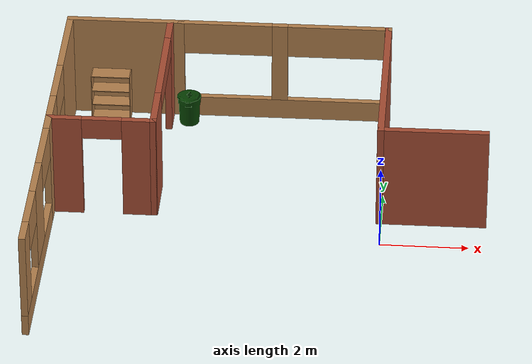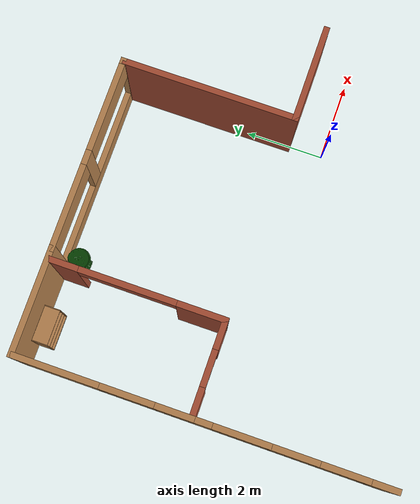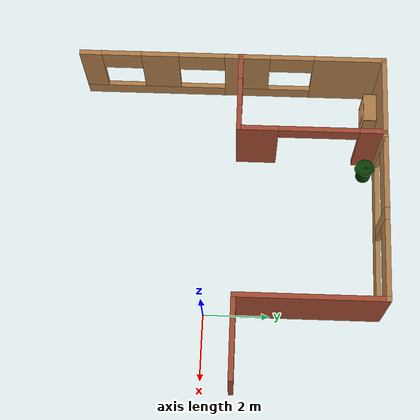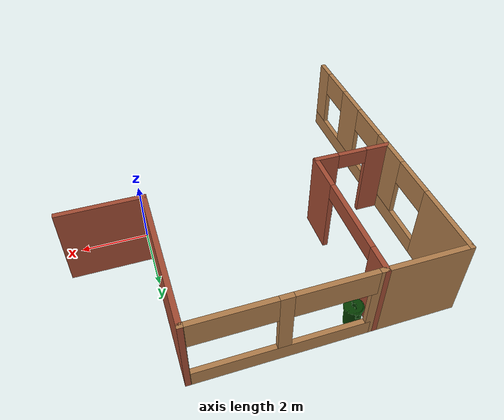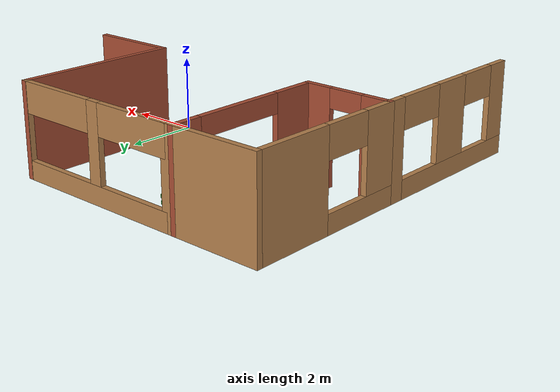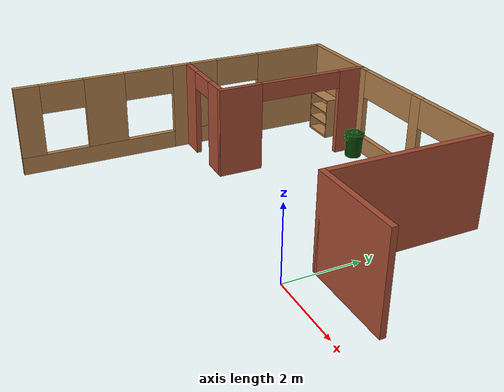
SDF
<sdf version="1.6">
 <model name="turtlebot3_house">
  <link name="Wall_101">
   <pose>-0.05 3.1 0 0 0 -1.5708</pose>
   <visual name="Wall_101_Visual">
    <pose>0 0 1.25 0 -0 0</pose>
    <geometry><box><size>4.5 0.15 2.5</size></box></geometry>
    <material>
     <script><uri>file://media/materials/scripts/gazebo.material</uri><name>Gazebo/Bricks</name></script>
     <ambient>1 1 1 1</ambient>
     <diffuse>1 1 1 1</diffuse>
     <specular>0.2 0.2 0.2 1</specular>
     <emissive>0 0 0 1</emissive>
    </material>
   </visual>
   <collision name="Wall_101_Collision">
    <pose>0 0 1.25 0 -0 0</pose>
    <geometry><box><size>4.5 0.15 2.5</size></box></geometry>
    <surface>
     <friction>
      <ode><mu>1</mu><mu2>1</mu2><fdir1>0 0 0</fdir1><slip1>0</slip1><slip2>0</slip2></ode>
      <torsional>
       <coefficient>1</coefficient>
       <patch_radius>0</patch_radius>
       <surface_radius>0</surface_radius>
       <use_patch_radius>1</use_patch_radius>
       <ode><slip>0</slip></ode>
      </torsional>
     </friction>
     <bounce><restitution_coefficient>0</restitution_coefficient><threshold>1e+06</threshold></bounce>
     <contact>
      <collide_without_contact>0</collide_without_contact>
      <collide_without_contact_bitmask>1</collide_without_contact_bitmask>
      <collide_bitmask>1</collide_bitmask>
      <ode>
       <soft_cfm>0</soft_cfm>
       <soft_erp>0.2</soft_erp>
       <kp>1e+13</kp>
       <kd>1</kd>
       <max_vel>0.01</max_vel>
       <min_depth>0</min_depth>
      </ode>
      <bullet>
       <split_impulse>1</split_impulse>
       <split_impulse_penetration_threshold>-0.01</split_impulse_penetration_threshold>
       <soft_cfm>0</soft_cfm>
       <soft_erp>0.2</soft_erp>
       <kp>1e+13</kp>
       <kd>1</kd>
      </bullet>
     </contact>
    </surface>
   </collision>
  </link>
  <link name="Wall_83">
   <pose>-2.475 5.275 0 0 -0 3.14159</pose>
   <visual name="Wall_83_Visual_2">
    <pose>0.110246 0 1.5 0 -0 0</pose>
    <geometry><box><size>0.37052 0.15 2</size></box></geometry>
    <material>
     <script><uri>file://media/materials/scripts/gazebo.material</uri><name>Gazebo/Wood</name></script>
     <ambient>1 1 1 1</ambient>
     <diffuse>1 1 1 1</diffuse>
     <specular>0.2 0.2 0.2 1</specular>
     <emissive>0 0 0 1</emissive>
    </material>
   </visual>
   <visual name="Wall_83_Visual_6">
    <pose>1.39775 0 2.1 0 -0 0</pose>
    <geometry><box><size>2.20449 0.15 0.8</size></box></geometry>
    <material>
     <script><uri>file://media/materials/scripts/gazebo.material</uri><name>Gazebo/Wood</name></script>
     <ambient>1 1 1 1</ambient>
     <diffuse>1 1 1 1</diffuse>
     <specular>0.2 0.2 0.2 1</specular>
     <emissive>0 0 0 1</emissive>
    </material>
   </visual>
   <visual name="Wall_83_Visual_3">
    <pose>0.110246 0 1.5 0 -0 0</pose>
    <geometry><box><size>0.37052 0.15 2</size></box></geometry>
    <material>
     <script><uri>file://media/materials/scripts/gazebo.material</uri><name>Gazebo/Wood</name></script>
     <ambient>1 1 1 1</ambient>
     <diffuse>1 1 1 1</diffuse>
     <specular>0.2 0.2 0.2 1</specular>
     <emissive>0 0 0 1</emissive>
    </material>
   </visual>
   <visual name="Wall_83_Visual_1">
    <pose>0.080993 0 0.25 0 -0 0</pose>
    <geometry><box><size>4.83801 0.15 0.5</size></box></geometry>
    <material>
     <script><uri>file://media/materials/scripts/gazebo.material</uri><name>Gazebo/Wood</name></script>
     <ambient>1 1 1 1</ambient>
     <diffuse>1 1 1 1</diffuse>
     <specular>0.2 0.2 0.2 1</specular>
     <emissive>0 0 0 1</emissive>
    </material>
   </visual>
   <visual name="Wall_83_Visual_4">
    <pose>-1.20651 0 2.1 0 -0 0</pose>
    <geometry><box><size>2.263 0.15 0.8</size></box></geometry>
    <material>
     <script><uri>file://media/materials/scripts/gazebo.material</uri><name>Gazebo/Wood</name></script>
     <ambient>1 1 1 1</ambient>
     <diffuse>1 1 1 1</diffuse>
     <specular>0.2 0.2 0.2 1</specular>
     <emissive>0 0 0 1</emissive>
    </material>
   </visual>
   <visual name="Wall_83_Visual_5">
    <pose>1.39775 0 2.1 0 -0 0</pose>
    <geometry><box><size>2.20449 0.15 0.8</size></box></geometry>
    <material>
     <script><uri>file://media/materials/scripts/gazebo.material</uri><name>Gazebo/Wood</name></script>
     <ambient>1 1 1 1</ambient>
     <diffuse>1 1 1 1</diffuse>
     <specular>0.2 0.2 0.2 1</specular>
     <emissive>0 0 0 1</emissive>
    </material>
   </visual>
   <visual name="Wall_83_Visual_0">
    <pose>-2.41901 0 1.25 0 -0 0</pose>
    <geometry><box><size>0.161986 0.15 2.5</size></box></geometry>
    <material>
     <script><uri>file://media/materials/scripts/gazebo.material</uri><name>Gazebo/Wood</name></script>
     <ambient>1 1 1 1</ambient>
     <diffuse>1 1 1 1</diffuse>
     <specular>0.2 0.2 0.2 1</specular>
     <emissive>0 0 0 1</emissive>
    </material>
   </visual>
   <collision name="Wall_83_Collision_4">
    <pose>-1.20651 0 2.1 0 -0 0</pose>
    <geometry><box><size>2.263 0.15 0.8</size></box></geometry>
    <surface>
     <friction>
      <ode><mu>1</mu><mu2>1</mu2><fdir1>0 0 0</fdir1><slip1>0</slip1><slip2>0</slip2></ode>
      <torsional>
       <coefficient>1</coefficient>
       <patch_radius>0</patch_radius>
       <surface_radius>0</surface_radius>
       <use_patch_radius>1</use_patch_radius>
       <ode><slip>0</slip></ode>
      </torsional>
     </friction>
     <bounce><restitution_coefficient>0</restitution_coefficient><threshold>1e+06</threshold></bounce>
     <contact>
      <collide_without_contact>0</collide_without_contact>
      <collide_without_contact_bitmask>1</collide_without_contact_bitmask>
      <collide_bitmask>1</collide_bitmask>
      <ode>
       <soft_cfm>0</soft_cfm>
       <soft_erp>0.2</soft_erp>
       <kp>1e+13</kp>
       <kd>1</kd>
       <max_vel>0.01</max_vel>
       <min_depth>0</min_depth>
      </ode>
      <bullet>
       <split_impulse>1</split_impulse>
       <split_impulse_penetration_threshold>-0.01</split_impulse_penetration_threshold>
       <soft_cfm>0</soft_cfm>
       <soft_erp>0.2</soft_erp>
       <kp>1e+13</kp>
       <kd>1</kd>
      </bullet>
     </contact>
    </surface>
   </collision>
   <collision name="Wall_83_Collision_2">
    <pose>0.110246 0 1.5 0 -0 0</pose>
    <geometry><box><size>0.37052 0.15 2</size></box></geometry>
    <surface>
     <friction>
      <ode><mu>1</mu><mu2>1</mu2><fdir1>0 0 0</fdir1><slip1>0</slip1><slip2>0</slip2></ode>
      <torsional>
       <coefficient>1</coefficient>
       <patch_radius>0</patch_radius>
       <surface_radius>0</surface_radius>
       <use_patch_radius>1</use_patch_radius>
       <ode><slip>0</slip></ode>
      </torsional>
     </friction>
     <bounce><restitution_coefficient>0</restitution_coefficient><threshold>1e+06</threshold></bounce>
     <contact>
      <collide_without_contact>0</collide_without_contact>
      <collide_without_contact_bitmask>1</collide_without_contact_bitmask>
      <collide_bitmask>1</collide_bitmask>
      <ode>
       <soft_cfm>0</soft_cfm>
       <soft_erp>0.2</soft_erp>
       <kp>1e+13</kp>
       <kd>1</kd>
       <max_vel>0.01</max_vel>
       <min_depth>0</min_depth>
      </ode>
      <bullet>
       <split_impulse>1</split_impulse>
       <split_impulse_penetration_threshold>-0.01</split_impulse_penetration_threshold>
       <soft_cfm>0</soft_cfm>
       <soft_erp>0.2</soft_erp>
       <kp>1e+13</kp>
       <kd>1</kd>
      </bullet>
     </contact>
    </surface>
   </collision>
   <collision name="Wall_83_Collision_6">
    <pose>1.39775 0 2.1 0 -0 0</pose>
    <geometry><box><size>2.20449 0.15 0.8</size></box></geometry>
    <surface>
     <friction>
      <ode><mu>1</mu><mu2>1</mu2><fdir1>0 0 0</fdir1><slip1>0</slip1><slip2>0</slip2></ode>
      <torsional>
       <coefficient>1</coefficient>
       <patch_radius>0</patch_radius>
       <surface_radius>0</surface_radius>
       <use_patch_radius>1</use_patch_radius>
       <ode><slip>0</slip></ode>
      </torsional>
     </friction>
     <bounce><restitution_coefficient>0</restitution_coefficient><threshold>1e+06</threshold></bounce>
     <contact>
      <collide_without_contact>0</collide_without_contact>
      <collide_without_contact_bitmask>1</collide_without_contact_bitmask>
      <collide_bitmask>1</collide_bitmask>
      <ode>
       <soft_cfm>0</soft_cfm>
       <soft_erp>0.2</soft_erp>
       <kp>1e+13</kp>
       <kd>1</kd>
       <max_vel>0.01</max_vel>
       <min_depth>0</min_depth>
      </ode>
      <bullet>
       <split_impulse>1</split_impulse>
       <split_impulse_penetration_threshold>-0.01</split_impulse_penetration_threshold>
       <soft_cfm>0</soft_cfm>
       <soft_erp>0.2</soft_erp>
       <kp>1e+13</kp>
       <kd>1</kd>
      </bullet>
     </contact>
    </surface>
   </collision>
   <collision name="Wall_83_Collision_0">
    <pose>-2.41901 0 1.25 0 -0 0</pose>
    <geometry><box><size>0.161986 0.15 2.5</size></box></geometry>
    <surface>
     <friction>
      <ode><mu>1</mu><mu2>1</mu2><fdir1>0 0 0</fdir1><slip1>0</slip1><slip2>0</slip2></ode>
      <torsional>
       <coefficient>1</coefficient>
       <patch_radius>0</patch_radius>
       <surface_radius>0</surface_radius>
       <use_patch_radius>1</use_patch_radius>
       <ode><slip>0</slip></ode>
      </torsional>
     </friction>
     <bounce><restitution_coefficient>0</restitution_coefficient><threshold>1e+06</threshold></bounce>
     <contact>
      <collide_without_contact>0</collide_without_contact>
      <collide_without_contact_bitmask>1</collide_without_contact_bitmask>
      <collide_bitmask>1</collide_bitmask>
      <ode>
       <soft_cfm>0</soft_cfm>
       <soft_erp>0.2</soft_erp>
       <kp>1e+13</kp>
       <kd>1</kd>
       <max_vel>0.01</max_vel>
       <min_depth>0</min_depth>
      </ode>
      <bullet>
       <split_impulse>1</split_impulse>
       <split_impulse_penetration_threshold>-0.01</split_impulse_penetration_threshold>
       <soft_cfm>0</soft_cfm>
       <soft_erp>0.2</soft_erp>
       <kp>1e+13</kp>
       <kd>1</kd>
      </bullet>
     </contact>
    </surface>
   </collision>
   <collision name="Wall_83_Collision_1">
    <pose>0.080993 0 0.25 0 -0 0</pose>
    <geometry><box><size>4.83801 0.15 0.5</size></box></geometry>
    <surface>
     <friction>
      <ode><mu>1</mu><mu2>1</mu2><fdir1>0 0 0</fdir1><slip1>0</slip1><slip2>0</slip2></ode>
      <torsional>
       <coefficient>1</coefficient>
       <patch_radius>0</patch_radius>
       <surface_radius>0</surface_radius>
       <use_patch_radius>1</use_patch_radius>
       <ode><slip>0</slip></ode>
      </torsional>
     </friction>
     <bounce><restitution_coefficient>0</restitution_coefficient><threshold>1e+06</threshold></bounce>
     <contact>
      <collide_without_contact>0</collide_without_contact>
      <collide_without_contact_bitmask>1</collide_without_contact_bitmask>
      <collide_bitmask>1</collide_bitmask>
      <ode>
       <soft_cfm>0</soft_cfm>
       <soft_erp>0.2</soft_erp>
       <kp>1e+13</kp>
       <kd>1</kd>
       <max_vel>0.01</max_vel>
       <min_depth>0</min_depth>
      </ode>
      <bullet>
       <split_impulse>1</split_impulse>
       <split_impulse_penetration_threshold>-0.01</split_impulse_penetration_threshold>
       <soft_cfm>0</soft_cfm>
       <soft_erp>0.2</soft_erp>
       <kp>1e+13</kp>
       <kd>1</kd>
      </bullet>
     </contact>
    </surface>
   </collision>
   <collision name="Wall_83_Collision_3">
    <pose>0.110246 0 1.5 0 -0 0</pose>
    <geometry><box><size>0.37052 0.15 2</size></box></geometry>
    <surface>
     <friction>
      <ode><mu>1</mu><mu2>1</mu2><fdir1>0 0 0</fdir1><slip1>0</slip1><slip2>0</slip2></ode>
      <torsional>
       <coefficient>1</coefficient>
       <patch_radius>0</patch_radius>
       <surface_radius>0</surface_radius>
       <use_patch_radius>1</use_patch_radius>
       <ode><slip>0</slip></ode>
      </torsional>
     </friction>
     <bounce><restitution_coefficient>0</restitution_coefficient><threshold>1e+06</threshold></bounce>
     <contact>
      <collide_without_contact>0</collide_without_contact>
      <collide_without_contact_bitmask>1</collide_without_contact_bitmask>
      <collide_bitmask>1</collide_bitmask>
      <ode>
       <soft_cfm>0</soft_cfm>
       <soft_erp>0.2</soft_erp>
       <kp>1e+13</kp>
       <kd>1</kd>
       <max_vel>0.01</max_vel>
       <min_depth>0</min_depth>
      </ode>
      <bullet>
       <split_impulse>1</split_impulse>
       <split_impulse_penetration_threshold>-0.01</split_impulse_penetration_threshold>
       <soft_cfm>0</soft_cfm>
       <soft_erp>0.2</soft_erp>
       <kp>1e+13</kp>
       <kd>1</kd>
      </bullet>
     </contact>
    </surface>
   </collision>
   <collision name="Wall_83_Collision_5">
    <pose>1.39775 0 2.1 0 -0 0</pose>
    <geometry><box><size>2.20449 0.15 0.8</size></box></geometry>
    <surface>
     <friction>
      <ode><mu>1</mu><mu2>1</mu2><fdir1>0 0 0</fdir1><slip1>0</slip1><slip2>0</slip2></ode>
      <torsional>
       <coefficient>1</coefficient>
       <patch_radius>0</patch_radius>
       <surface_radius>0</surface_radius>
       <use_patch_radius>1</use_patch_radius>
       <ode><slip>0</slip></ode>
      </torsional>
     </friction>
     <bounce><restitution_coefficient>0</restitution_coefficient><threshold>1e+06</threshold></bounce>
     <contact>
      <collide_without_contact>0</collide_without_contact>
      <collide_without_contact_bitmask>1</collide_without_contact_bitmask>
      <collide_bitmask>1</collide_bitmask>
      <ode>
       <soft_cfm>0</soft_cfm>
       <soft_erp>0.2</soft_erp>
       <kp>1e+13</kp>
       <kd>1</kd>
       <max_vel>0.01</max_vel>
       <min_depth>0</min_depth>
      </ode>
      <bullet>
       <split_impulse>1</split_impulse>
       <split_impulse_penetration_threshold>-0.01</split_impulse_penetration_threshold>
       <soft_cfm>0</soft_cfm>
       <soft_erp>0.2</soft_erp>
       <kp>1e+13</kp>
       <kd>1</kd>
      </bullet>
     </contact>
    </surface>
   </collision>
  </link>
  <link name="Wall_84">
   <pose>-6.2 5.275 0 0 -0 3.14159</pose>
   <visual name="Wall_84_Visual">
    <pose>0 0 1.25 0 -0 0</pose>
    <geometry><box><size>2.75 0.15 2.5</size></box></geometry>
    <material>
     <script><uri>file://media/materials/scripts/gazebo.material</uri><name>Gazebo/Wood</name></script>
     <ambient>1 1 1 1</ambient>
     <diffuse>1 1 1 1</diffuse>
     <specular>0.2 0.2 0.2 1</specular>
     <emissive>0 0 0 1</emissive>
    </material>
   </visual>
   <collision name="Wall_84_Collision">
    <pose>0 0 1.25 0 -0 0</pose>
    <geometry><box><size>2.75 0.15 2.5</size></box></geometry>
    <surface>
     <friction>
      <ode><mu>1</mu><mu2>1</mu2><fdir1>0 0 0</fdir1><slip1>0</slip1><slip2>0</slip2></ode>
      <torsional>
       <coefficient>1</coefficient>
       <patch_radius>0</patch_radius>
       <surface_radius>0</surface_radius>
       <use_patch_radius>1</use_patch_radius>
       <ode><slip>0</slip></ode>
      </torsional>
     </friction>
     <bounce><restitution_coefficient>0</restitution_coefficient><threshold>1e+06</threshold></bounce>
     <contact>
      <collide_without_contact>0</collide_without_contact>
      <collide_without_contact_bitmask>1</collide_without_contact_bitmask>
      <collide_bitmask>1</collide_bitmask>
      <ode>
       <soft_cfm>0</soft_cfm>
       <soft_erp>0.2</soft_erp>
       <kp>1e+13</kp>
       <kd>1</kd>
       <max_vel>0.01</max_vel>
       <min_depth>0</min_depth>
      </ode>
      <bullet>
       <split_impulse>1</split_impulse>
       <split_impulse_penetration_threshold>-0.01</split_impulse_penetration_threshold>
       <soft_cfm>0</soft_cfm>
       <soft_erp>0.2</soft_erp>
       <kp>1e+13</kp>
       <kd>1</kd>
      </bullet>
     </contact>
    </surface>
   </collision>
  </link>
  <link name="Wall_85">
   <pose>-7.5 3.1 0 0 0 -1.5708</pose>
   <visual name="Wall_85_Visual_3">
    <pose>0.62212 0 2.1 0 -0 0</pose>
    <geometry><box><size>1.332 0.15 0.8</size></box></geometry>
    <material>
     <script><uri>file://media/materials/scripts/gazebo.material</uri><name>Gazebo/Wood</name></script>
     <ambient>1 1 1 1</ambient>
     <diffuse>1 1 1 1</diffuse>
     <specular>0.2 0.2 0.2 1</specular>
     <emissive>0 0 0 1</emissive>
    </material>
   </visual>
   <visual name="Wall_85_Visual_2">
    <pose>1.76906 0 1.5 0 -0 0</pose>
    <geometry><box><size>0.96188 0.15 2</size></box></geometry>
    <material>
     <script><uri>file://media/materials/scripts/gazebo.material</uri><name>Gazebo/Wood</name></script>
     <ambient>1 1 1 1</ambient>
     <diffuse>1 1 1 1</diffuse>
     <specular>0.2 0.2 0.2 1</specular>
     <emissive>0 0 0 1</emissive>
    </material>
   </visual>
   <visual name="Wall_85_Visual_0">
    <pose>-1.14694 0 1.25 0 -0 0</pose>
    <geometry><box><size>2.20612 0.15 2.5</size></box></geometry>
    <material>
     <script><uri>file://media/materials/scripts/gazebo.material</uri><name>Gazebo/Wood</name></script>
     <ambient>1 1 1 1</ambient>
     <diffuse>1 1 1 1</diffuse>
     <specular>0.2 0.2 0.2 1</specular>
     <emissive>0 0 0 1</emissive>
    </material>
   </visual>
   <visual name="Wall_85_Visual_1">
    <pose>1.10306 0 0.25 0 -0 0</pose>
    <geometry><box><size>2.29388 0.15 0.5</size></box></geometry>
    <material>
     <script><uri>file://media/materials/scripts/gazebo.material</uri><name>Gazebo/Wood</name></script>
     <ambient>1 1 1 1</ambient>
     <diffuse>1 1 1 1</diffuse>
     <specular>0.2 0.2 0.2 1</specular>
     <emissive>0 0 0 1</emissive>
    </material>
   </visual>
   <collision name="Wall_85_Collision_3">
    <pose>0.62212 0 2.1 0 -0 0</pose>
    <geometry><box><size>1.332 0.15 0.8</size></box></geometry>
    <surface>
     <friction>
      <ode><mu>1</mu><mu2>1</mu2><fdir1>0 0 0</fdir1><slip1>0</slip1><slip2>0</slip2></ode>
      <torsional>
       <coefficient>1</coefficient>
       <patch_radius>0</patch_radius>
       <surface_radius>0</surface_radius>
       <use_patch_radius>1</use_patch_radius>
       <ode><slip>0</slip></ode>
      </torsional>
     </friction>
     <bounce><restitution_coefficient>0</restitution_coefficient><threshold>1e+06</threshold></bounce>
     <contact>
      <collide_without_contact>0</collide_without_contact>
      <collide_without_contact_bitmask>1</collide_without_contact_bitmask>
      <collide_bitmask>1</collide_bitmask>
      <ode>
       <soft_cfm>0</soft_cfm>
       <soft_erp>0.2</soft_erp>
       <kp>1e+13</kp>
       <kd>1</kd>
       <max_vel>0.01</max_vel>
       <min_depth>0</min_depth>
      </ode>
      <bullet>
       <split_impulse>1</split_impulse>
       <split_impulse_penetration_threshold>-0.01</split_impulse_penetration_threshold>
       <soft_cfm>0</soft_cfm>
       <soft_erp>0.2</soft_erp>
       <kp>1e+13</kp>
       <kd>1</kd>
      </bullet>
     </contact>
    </surface>
   </collision>
   <collision name="Wall_85_Collision_2">
    <pose>1.76906 0 1.5 0 -0 0</pose>
    <geometry><box><size>0.96188 0.15 2</size></box></geometry>
    <surface>
     <friction>
      <ode><mu>1</mu><mu2>1</mu2><fdir1>0 0 0</fdir1><slip1>0</slip1><slip2>0</slip2></ode>
      <torsional>
       <coefficient>1</coefficient>
       <patch_radius>0</patch_radius>
       <surface_radius>0</surface_radius>
       <use_patch_radius>1</use_patch_radius>
       <ode><slip>0</slip></ode>
      </torsional>
     </friction>
     <bounce><restitution_coefficient>0</restitution_coefficient><threshold>1e+06</threshold></bounce>
     <contact>
      <collide_without_contact>0</collide_without_contact>
      <collide_without_contact_bitmask>1</collide_without_contact_bitmask>
      <collide_bitmask>1</collide_bitmask>
      <ode>
       <soft_cfm>0</soft_cfm>
       <soft_erp>0.2</soft_erp>
       <kp>1e+13</kp>
       <kd>1</kd>
       <max_vel>0.01</max_vel>
       <min_depth>0</min_depth>
      </ode>
      <bullet>
       <split_impulse>1</split_impulse>
       <split_impulse_penetration_threshold>-0.01</split_impulse_penetration_threshold>
       <soft_cfm>0</soft_cfm>
       <soft_erp>0.2</soft_erp>
       <kp>1e+13</kp>
       <kd>1</kd>
      </bullet>
     </contact>
    </surface>
   </collision>
   <collision name="Wall_85_Collision_1">
    <pose>1.10306 0 0.25 0 -0 0</pose>
    <geometry><box><size>2.29388 0.15 0.5</size></box></geometry>
    <surface>
     <friction>
      <ode><mu>1</mu><mu2>1</mu2><fdir1>0 0 0</fdir1><slip1>0</slip1><slip2>0</slip2></ode>
      <torsional>
       <coefficient>1</coefficient>
       <patch_radius>0</patch_radius>
       <surface_radius>0</surface_radius>
       <use_patch_radius>1</use_patch_radius>
       <ode><slip>0</slip></ode>
      </torsional>
     </friction>
     <bounce><restitution_coefficient>0</restitution_coefficient><threshold>1e+06</threshold></bounce>
     <contact>
      <collide_without_contact>0</collide_without_contact>
      <collide_without_contact_bitmask>1</collide_without_contact_bitmask>
      <collide_bitmask>1</collide_bitmask>
      <ode>
       <soft_cfm>0</soft_cfm>
       <soft_erp>0.2</soft_erp>
       <kp>1e+13</kp>
       <kd>1</kd>
       <max_vel>0.01</max_vel>
       <min_depth>0</min_depth>
      </ode>
      <bullet>
       <split_impulse>1</split_impulse>
       <split_impulse_penetration_threshold>-0.01</split_impulse_penetration_threshold>
       <soft_cfm>0</soft_cfm>
       <soft_erp>0.2</soft_erp>
       <kp>1e+13</kp>
       <kd>1</kd>
      </bullet>
     </contact>
    </surface>
   </collision>
   <collision name="Wall_85_Collision_0">
    <pose>-1.14694 0 1.25 0 -0 0</pose>
    <geometry><box><size>2.20612 0.15 2.5</size></box></geometry>
    <surface>
     <friction>
      <ode><mu>1</mu><mu2>1</mu2><fdir1>0 0 0</fdir1><slip1>0</slip1><slip2>0</slip2></ode>
      <torsional>
       <coefficient>1</coefficient>
       <patch_radius>0</patch_radius>
       <surface_radius>0</surface_radius>
       <use_patch_radius>1</use_patch_radius>
       <ode><slip>0</slip></ode>
      </torsional>
     </friction>
     <bounce><restitution_coefficient>0</restitution_coefficient><threshold>1e+06</threshold></bounce>
     <contact>
      <collide_without_contact>0</collide_without_contact>
      <collide_without_contact_bitmask>1</collide_without_contact_bitmask>
      <collide_bitmask>1</collide_bitmask>
      <ode>
       <soft_cfm>0</soft_cfm>
       <soft_erp>0.2</soft_erp>
       <kp>1e+13</kp>
       <kd>1</kd>
       <max_vel>0.01</max_vel>
       <min_depth>0</min_depth>
      </ode>
      <bullet>
       <split_impulse>1</split_impulse>
       <split_impulse_penetration_threshold>-0.01</split_impulse_penetration_threshold>
       <soft_cfm>0</soft_cfm>
       <soft_erp>0.2</soft_erp>
       <kp>1e+13</kp>
       <kd>1</kd>
      </bullet>
     </contact>
    </surface>
   </collision>
  </link>
  <link name="Wall_86">
   <pose>-7.5 -1.5 0 0 0 -1.5708</pose>
   <visual name="Wall_86_Visual_1">
    <pose>0.28462 0 0.25 0 -0 0</pose>
    <geometry><box><size>4.43076 0.15 0.5</size></box></geometry>
    <material>
     <script><uri>file://media/materials/scripts/gazebo.material</uri><name>Gazebo/Wood</name></script>
     <ambient>1 1 1 1</ambient>
     <diffuse>1 1 1 1</diffuse>
     <specular>0.2 0.2 0.2 1</specular>
     <emissive>0 0 0 1</emissive>
    </material>
   </visual>
   <visual name="Wall_86_Visual_4">
    <pose>-1.22476 0 2.1 0 -0 0</pose>
    <geometry><box><size>1.412 0.15 0.8</size></box></geometry>
    <material>
     <script><uri>file://media/materials/scripts/gazebo.material</uri><name>Gazebo/Wood</name></script>
     <ambient>1 1 1 1</ambient>
     <diffuse>1 1 1 1</diffuse>
     <specular>0.2 0.2 0.2 1</specular>
     <emissive>0 0 0 1</emissive>
    </material>
   </visual>
   <visual name="Wall_86_Visual_0">
    <pose>-2.21538 0 1.25 0 -0 0</pose>
    <geometry><box><size>0.569241 0.15 2.5</size></box></geometry>
    <material>
     <script><uri>file://media/materials/scripts/gazebo.material</uri><name>Gazebo/Wood</name></script>
     <ambient>1 1 1 1</ambient>
     <diffuse>1 1 1 1</diffuse>
     <specular>0.2 0.2 0.2 1</specular>
     <emissive>0 0 0 1</emissive>
    </material>
   </visual>
   <visual name="Wall_86_Visual_5">
    <pose>1.22246 0 2.1 0 -0 0</pose>
    <geometry><box><size>1.199 0.15 0.8</size></box></geometry>
    <material>
     <script><uri>file://media/materials/scripts/gazebo.material</uri><name>Gazebo/Wood</name></script>
     <ambient>1 1 1 1</ambient>
     <diffuse>1 1 1 1</diffuse>
     <specular>0.2 0.2 0.2 1</specular>
     <emissive>0 0 0 1</emissive>
    </material>
   </visual>
   <visual name="Wall_86_Visual_2">
    <pose>0.0521 0 1.5 0 -0 0</pose>
    <geometry><box><size>1.14172 0.15 2</size></box></geometry>
    <material>
     <script><uri>file://media/materials/scripts/gazebo.material</uri><name>Gazebo/Wood</name></script>
     <ambient>1 1 1 1</ambient>
     <diffuse>1 1 1 1</diffuse>
     <specular>0.2 0.2 0.2 1</specular>
     <emissive>0 0 0 1</emissive>
    </material>
   </visual>
   <visual name="Wall_86_Visual_3">
    <pose>2.16098 0 1.5 0 -0 0</pose>
    <geometry><box><size>0.678041 0.15 2</size></box></geometry>
    <material>
     <script><uri>file://media/materials/scripts/gazebo.material</uri><name>Gazebo/Wood</name></script>
     <ambient>1 1 1 1</ambient>
     <diffuse>1 1 1 1</diffuse>
     <specular>0.2 0.2 0.2 1</specular>
     <emissive>0 0 0 1</emissive>
    </material>
   </visual>
   <collision name="Wall_86_Collision_4">
    <pose>-1.22476 0 2.1 0 -0 0</pose>
    <geometry><box><size>1.412 0.15 0.8</size></box></geometry>
    <surface>
     <friction>
      <ode><mu>1</mu><mu2>1</mu2><fdir1>0 0 0</fdir1><slip1>0</slip1><slip2>0</slip2></ode>
      <torsional>
       <coefficient>1</coefficient>
       <patch_radius>0</patch_radius>
       <surface_radius>0</surface_radius>
       <use_patch_radius>1</use_patch_radius>
       <ode><slip>0</slip></ode>
      </torsional>
     </friction>
     <bounce><restitution_coefficient>0</restitution_coefficient><threshold>1e+06</threshold></bounce>
     <contact>
      <collide_without_contact>0</collide_without_contact>
      <collide_without_contact_bitmask>1</collide_without_contact_bitmask>
      <collide_bitmask>1</collide_bitmask>
      <ode>
       <soft_cfm>0</soft_cfm>
       <soft_erp>0.2</soft_erp>
       <kp>1e+13</kp>
       <kd>1</kd>
       <max_vel>0.01</max_vel>
       <min_depth>0</min_depth>
      </ode>
      <bullet>
       <split_impulse>1</split_impulse>
       <split_impulse_penetration_threshold>-0.01</split_impulse_penetration_threshold>
       <soft_cfm>0</soft_cfm>
       <soft_erp>0.2</soft_erp>
       <kp>1e+13</kp>
       <kd>1</kd>
      </bullet>
     </contact>
    </surface>
   </collision>
   <collision name="Wall_86_Collision_5">
    <pose>1.22246 0 2.1 0 -0 0</pose>
    <geometry><box><size>1.199 0.15 0.8</size></box></geometry>
    <surface>
     <friction>
      <ode><mu>1</mu><mu2>1</mu2><fdir1>0 0 0</fdir1><slip1>0</slip1><slip2>0</slip2></ode>
      <torsional>
       <coefficient>1</coefficient>
       <patch_radius>0</patch_radius>
       <surface_radius>0</surface_radius>
       <use_patch_radius>1</use_patch_radius>
       <ode><slip>0</slip></ode>
      </torsional>
     </friction>
     <bounce><restitution_coefficient>0</restitution_coefficient><threshold>1e+06</threshold></bounce>
     <contact>
      <collide_without_contact>0</collide_without_contact>
      <collide_without_contact_bitmask>1</collide_without_contact_bitmask>
      <collide_bitmask>1</collide_bitmask>
      <ode>
       <soft_cfm>0</soft_cfm>
       <soft_erp>0.2</soft_erp>
       <kp>1e+13</kp>
       <kd>1</kd>
       <max_vel>0.01</max_vel>
       <min_depth>0</min_depth>
      </ode>
      <bullet>
       <split_impulse>1</split_impulse>
       <split_impulse_penetration_threshold>-0.01</split_impulse_penetration_threshold>
       <soft_cfm>0</soft_cfm>
       <soft_erp>0.2</soft_erp>
       <kp>1e+13</kp>
       <kd>1</kd>
      </bullet>
     </contact>
    </surface>
   </collision>
   <collision name="Wall_86_Collision_2">
    <pose>0.0521 0 1.5 0 -0 0</pose>
    <geometry><box><size>1.14172 0.15 2</size></box></geometry>
    <surface>
     <friction>
      <ode><mu>1</mu><mu2>1</mu2><fdir1>0 0 0</fdir1><slip1>0</slip1><slip2>0</slip2></ode>
      <torsional>
       <coefficient>1</coefficient>
       <patch_radius>0</patch_radius>
       <surface_radius>0</surface_radius>
       <use_patch_radius>1</use_patch_radius>
       <ode><slip>0</slip></ode>
      </torsional>
     </friction>
     <bounce><restitution_coefficient>0</restitution_coefficient><threshold>1e+06</threshold></bounce>
     <contact>
      <collide_without_contact>0</collide_without_contact>
      <collide_without_contact_bitmask>1</collide_without_contact_bitmask>
      <collide_bitmask>1</collide_bitmask>
      <ode>
       <soft_cfm>0</soft_cfm>
       <soft_erp>0.2</soft_erp>
       <kp>1e+13</kp>
       <kd>1</kd>
       <max_vel>0.01</max_vel>
       <min_depth>0</min_depth>
      </ode>
      <bullet>
       <split_impulse>1</split_impulse>
       <split_impulse_penetration_threshold>-0.01</split_impulse_penetration_threshold>
       <soft_cfm>0</soft_cfm>
       <soft_erp>0.2</soft_erp>
       <kp>1e+13</kp>
       <kd>1</kd>
      </bullet>
     </contact>
    </surface>
   </collision>
   <collision name="Wall_86_Collision_1">
    <pose>0.28462 0 0.25 0 -0 0</pose>
    <geometry><box><size>4.43076 0.15 0.5</size></box></geometry>
    <surface>
     <friction>
      <ode><mu>1</mu><mu2>1</mu2><fdir1>0 0 0</fdir1><slip1>0</slip1><slip2>0</slip2></ode>
      <torsional>
       <coefficient>1</coefficient>
       <patch_radius>0</patch_radius>
       <surface_radius>0</surface_radius>
       <use_patch_radius>1</use_patch_radius>
       <ode><slip>0</slip></ode>
      </torsional>
     </friction>
     <bounce><restitution_coefficient>0</restitution_coefficient><threshold>1e+06</threshold></bounce>
     <contact>
      <collide_without_contact>0</collide_without_contact>
      <collide_without_contact_bitmask>1</collide_without_contact_bitmask>
      <collide_bitmask>1</collide_bitmask>
      <ode>
       <soft_cfm>0</soft_cfm>
       <soft_erp>0.2</soft_erp>
       <kp>1e+13</kp>
       <kd>1</kd>
       <max_vel>0.01</max_vel>
       <min_depth>0</min_depth>
      </ode>
      <bullet>
       <split_impulse>1</split_impulse>
       <split_impulse_penetration_threshold>-0.01</split_impulse_penetration_threshold>
       <soft_cfm>0</soft_cfm>
       <soft_erp>0.2</soft_erp>
       <kp>1e+13</kp>
       <kd>1</kd>
      </bullet>
     </contact>
    </surface>
   </collision>
   <collision name="Wall_86_Collision_3">
    <pose>2.16098 0 1.5 0 -0 0</pose>
    <geometry><box><size>0.678041 0.15 2</size></box></geometry>
    <surface>
     <friction>
      <ode><mu>1</mu><mu2>1</mu2><fdir1>0 0 0</fdir1><slip1>0</slip1><slip2>0</slip2></ode>
      <torsional>
       <coefficient>1</coefficient>
       <patch_radius>0</patch_radius>
       <surface_radius>0</surface_radius>
       <use_patch_radius>1</use_patch_radius>
       <ode><slip>0</slip></ode>
      </torsional>
     </friction>
     <bounce><restitution_coefficient>0</restitution_coefficient><threshold>1e+06</threshold></bounce>
     <contact>
      <collide_without_contact>0</collide_without_contact>
      <collide_without_contact_bitmask>1</collide_without_contact_bitmask>
      <collide_bitmask>1</collide_bitmask>
      <ode>
       <soft_cfm>0</soft_cfm>
       <soft_erp>0.2</soft_erp>
       <kp>1e+13</kp>
       <kd>1</kd>
       <max_vel>0.01</max_vel>
       <min_depth>0</min_depth>
      </ode>
      <bullet>
       <split_impulse>1</split_impulse>
       <split_impulse_penetration_threshold>-0.01</split_impulse_penetration_threshold>
       <soft_cfm>0</soft_cfm>
       <soft_erp>0.2</soft_erp>
       <kp>1e+13</kp>
       <kd>1</kd>
      </bullet>
     </contact>
    </surface>
   </collision>
   <collision name="Wall_86_Collision_0">
    <pose>-2.21538 0 1.25 0 -0 0</pose>
    <geometry><box><size>0.569241 0.15 2.5</size></box></geometry>
    <surface>
     <friction>
      <ode><mu>1</mu><mu2>1</mu2><fdir1>0 0 0</fdir1><slip1>0</slip1><slip2>0</slip2></ode>
      <torsional>
       <coefficient>1</coefficient>
       <patch_radius>0</patch_radius>
       <surface_radius>0</surface_radius>
       <use_patch_radius>1</use_patch_radius>
       <ode><slip>0</slip></ode>
      </torsional>
     </friction>
     <bounce><restitution_coefficient>0</restitution_coefficient><threshold>1e+06</threshold></bounce>
     <contact>
      <collide_without_contact>0</collide_without_contact>
      <collide_without_contact_bitmask>1</collide_without_contact_bitmask>
      <collide_bitmask>1</collide_bitmask>
      <ode>
       <soft_cfm>0</soft_cfm>
       <soft_erp>0.2</soft_erp>
       <kp>1e+13</kp>
       <kd>1</kd>
       <max_vel>0.01</max_vel>
       <min_depth>0</min_depth>
      </ode>
      <bullet>
       <split_impulse>1</split_impulse>
       <split_impulse_penetration_threshold>-0.01</split_impulse_penetration_threshold>
       <soft_cfm>0</soft_cfm>
       <soft_erp>0.2</soft_erp>
       <kp>1e+13</kp>
       <kd>1</kd>
      </bullet>
     </contact>
    </surface>
   </collision>
  </link>
  <link name="Wall_90">
   <pose>1.125 0.925 0 0 -0 0</pose>
   <visual name="Wall_90_Visual">
    <pose>0 0 1.25 0 -0 0</pose>
    <geometry><box><size>2.5 0.15 2.5</size></box></geometry>
    <material>
     <script><uri>file://media/materials/scripts/gazebo.material</uri><name>Gazebo/Bricks</name></script>
     <ambient>1 1 1 1</ambient>
     <diffuse>1 1 1 1</diffuse>
     <specular>0.2 0.2 0.2 1</specular>
     <emissive>0 0 0 1</emissive>
    </material>
   </visual>
   <collision name="Wall_90_Collision">
    <pose>0 0 1.25 0 -0 0</pose>
    <geometry><box><size>2.5 0.15 2.5</size></box></geometry>
    <surface>
     <friction>
      <ode><mu>1</mu><mu2>1</mu2><fdir1>0 0 0</fdir1><slip1>0</slip1><slip2>0</slip2></ode>
      <torsional>
       <coefficient>1</coefficient>
       <patch_radius>0</patch_radius>
       <surface_radius>0</surface_radius>
       <use_patch_radius>1</use_patch_radius>
       <ode><slip>0</slip></ode>
      </torsional>
     </friction>
     <bounce><restitution_coefficient>0</restitution_coefficient><threshold>1e+06</threshold></bounce>
     <contact>
      <collide_without_contact>0</collide_without_contact>
      <collide_without_contact_bitmask>1</collide_without_contact_bitmask>
      <collide_bitmask>1</collide_bitmask>
      <ode>
       <soft_cfm>0</soft_cfm>
       <soft_erp>0.2</soft_erp>
       <kp>1e+13</kp>
       <kd>1</kd>
       <max_vel>0.01</max_vel>
       <min_depth>0</min_depth>
      </ode>
      <bullet>
       <split_impulse>1</split_impulse>
       <split_impulse_penetration_threshold>-0.01</split_impulse_penetration_threshold>
       <soft_cfm>0</soft_cfm>
       <soft_erp>0.2</soft_erp>
       <kp>1e+13</kp>
       <kd>1</kd>
      </bullet>
     </contact>
    </surface>
   </collision>
  </link>
  <link name="Wall_98">
   <pose>-6.325 0.925 0 0 -0 0</pose>
   <visual name="Wall_98_Visual_2">
    <pose>0.015777 0 2.25 0 -0 0</pose>
    <geometry><box><size>0.9 0.15 0.5</size></box></geometry>
    <material>
     <script><uri>file://media/materials/scripts/gazebo.material</uri><name>Gazebo/Bricks</name></script>
     <ambient>1 1 1 1</ambient>
     <diffuse>1 1 1 1</diffuse>
     <specular>0.2 0.2 0.2 1</specular>
     <emissive>0 0 0 1</emissive>
    </material>
   </visual>
   <visual name="Wall_98_Visual_1">
    <pose>0.857889 0 1.25 0 -0 0</pose>
    <geometry><box><size>0.784223 0.15 2.5</size></box></geometry>
    <material>
     <script><uri>file://media/materials/scripts/gazebo.material</uri><name>Gazebo/Bricks</name></script>
     <ambient>1 1 1 1</ambient>
     <diffuse>1 1 1 1</diffuse>
     <specular>0.2 0.2 0.2 1</specular>
     <emissive>0 0 0 1</emissive>
    </material>
   </visual>
   <visual name="Wall_98_Visual_0">
    <pose>-0.842111 0 1.25 0 -0 0</pose>
    <geometry><box><size>0.815777 0.15 2.5</size></box></geometry>
    <material>
     <script><uri>file://media/materials/scripts/gazebo.material</uri><name>Gazebo/Bricks</name></script>
     <ambient>1 1 1 1</ambient>
     <diffuse>1 1 1 1</diffuse>
     <specular>0.2 0.2 0.2 1</specular>
     <emissive>0 0 0 1</emissive>
    </material>
   </visual>
   <collision name="Wall_98_Collision_0">
    <pose>-0.842111 0 1.25 0 -0 0</pose>
    <geometry><box><size>0.815777 0.15 2.5</size></box></geometry>
    <surface>
     <friction>
      <ode><mu>1</mu><mu2>1</mu2><fdir1>0 0 0</fdir1><slip1>0</slip1><slip2>0</slip2></ode>
      <torsional>
       <coefficient>1</coefficient>
       <patch_radius>0</patch_radius>
       <surface_radius>0</surface_radius>
       <use_patch_radius>1</use_patch_radius>
       <ode><slip>0</slip></ode>
      </torsional>
     </friction>
     <bounce><restitution_coefficient>0</restitution_coefficient><threshold>1e+06</threshold></bounce>
     <contact>
      <collide_without_contact>0</collide_without_contact>
      <collide_without_contact_bitmask>1</collide_without_contact_bitmask>
      <collide_bitmask>1</collide_bitmask>
      <ode>
       <soft_cfm>0</soft_cfm>
       <soft_erp>0.2</soft_erp>
       <kp>1e+13</kp>
       <kd>1</kd>
       <max_vel>0.01</max_vel>
       <min_depth>0</min_depth>
      </ode>
      <bullet>
       <split_impulse>1</split_impulse>
       <split_impulse_penetration_threshold>-0.01</split_impulse_penetration_threshold>
       <soft_cfm>0</soft_cfm>
       <soft_erp>0.2</soft_erp>
       <kp>1e+13</kp>
       <kd>1</kd>
      </bullet>
     </contact>
    </surface>
   </collision>
   <collision name="Wall_98_Collision_1">
    <pose>0.857889 0 1.25 0 -0 0</pose>
    <geometry><box><size>0.784223 0.15 2.5</size></box></geometry>
    <surface>
     <friction>
      <ode><mu>1</mu><mu2>1</mu2><fdir1>0 0 0</fdir1><slip1>0</slip1><slip2>0</slip2></ode>
      <torsional>
       <coefficient>1</coefficient>
       <patch_radius>0</patch_radius>
       <surface_radius>0</surface_radius>
       <use_patch_radius>1</use_patch_radius>
       <ode><slip>0</slip></ode>
      </torsional>
     </friction>
     <bounce><restitution_coefficient>0</restitution_coefficient><threshold>1e+06</threshold></bounce>
     <contact>
      <collide_without_contact>0</collide_without_contact>
      <collide_without_contact_bitmask>1</collide_without_contact_bitmask>
      <collide_bitmask>1</collide_bitmask>
      <ode>
       <soft_cfm>0</soft_cfm>
       <soft_erp>0.2</soft_erp>
       <kp>1e+13</kp>
       <kd>1</kd>
       <max_vel>0.01</max_vel>
       <min_depth>0</min_depth>
      </ode>
      <bullet>
       <split_impulse>1</split_impulse>
       <split_impulse_penetration_threshold>-0.01</split_impulse_penetration_threshold>
       <soft_cfm>0</soft_cfm>
       <soft_erp>0.2</soft_erp>
       <kp>1e+13</kp>
       <kd>1</kd>
      </bullet>
     </contact>
    </surface>
   </collision>
   <collision name="Wall_98_Collision_2">
    <pose>0.015777 0 2.25 0 -0 0</pose>
    <geometry><box><size>0.9 0.15 0.5</size></box></geometry>
    <surface>
     <friction>
      <ode><mu>1</mu><mu2>1</mu2><fdir1>0 0 0</fdir1><slip1>0</slip1><slip2>0</slip2></ode>
      <torsional>
       <coefficient>1</coefficient>
       <patch_radius>0</patch_radius>
       <surface_radius>0</surface_radius>
       <use_patch_radius>1</use_patch_radius>
       <ode><slip>0</slip></ode>
      </torsional>
     </friction>
     <bounce><restitution_coefficient>0</restitution_coefficient><threshold>1e+06</threshold></bounce>
     <contact>
      <collide_without_contact>0</collide_without_contact>
      <collide_without_contact_bitmask>1</collide_without_contact_bitmask>
      <collide_bitmask>1</collide_bitmask>
      <ode>
       <soft_cfm>0</soft_cfm>
       <soft_erp>0.2</soft_erp>
       <kp>1e+13</kp>
       <kd>1</kd>
       <max_vel>0.01</max_vel>
       <min_depth>0</min_depth>
      </ode>
      <bullet>
       <split_impulse>1</split_impulse>
       <split_impulse_penetration_threshold>-0.01</split_impulse_penetration_threshold>
       <soft_cfm>0</soft_cfm>
       <soft_erp>0.2</soft_erp>
       <kp>1e+13</kp>
       <kd>1</kd>
      </bullet>
     </contact>
    </surface>
   </collision>
  </link>
  <link name="Wall_99">
   <pose>-5.15 3.1 0 0 -0 1.5708</pose>
   <visual name="Wall_99_Visual_0">
    <pose>-1.62116 0 1.25 0 -0 0</pose>
    <geometry><box><size>1.25768 0.15 2.5</size></box></geometry>
    <material>
     <script><uri>file://media/materials/scripts/gazebo.material</uri><name>Gazebo/Bricks</name></script>
     <ambient>1 1 1 1</ambient>
     <diffuse>1 1 1 1</diffuse>
     <specular>0.2 0.2 0.2 1</specular>
     <emissive>0 0 0 1</emissive>
    </material>
   </visual>
   <visual name="Wall_99_Visual_2">
    <pose>0.215786 0 2.25 0 -0 0</pose>
    <geometry><box><size>2.41621 0.15 0.5</size></box></geometry>
    <material>
     <script><uri>file://media/materials/scripts/gazebo.material</uri><name>Gazebo/Bricks</name></script>
     <ambient>1 1 1 1</ambient>
     <diffuse>1 1 1 1</diffuse>
     <specular>0.2 0.2 0.2 1</specular>
     <emissive>0 0 0 1</emissive>
    </material>
   </visual>
   <visual name="Wall_99_Visual_1">
    <pose>1.83695 0 1.25 0 -0 0</pose>
    <geometry><box><size>0.826108 0.15 2.5</size></box></geometry>
    <material>
     <script><uri>file://media/materials/scripts/gazebo.material</uri><name>Gazebo/Bricks</name></script>
     <ambient>1 1 1 1</ambient>
     <diffuse>1 1 1 1</diffuse>
     <specular>0.2 0.2 0.2 1</specular>
     <emissive>0 0 0 1</emissive>
    </material>
   </visual>
   <collision name="Wall_99_Collision_0">
    <pose>-1.62116 0 1.25 0 -0 0</pose>
    <geometry><box><size>1.25768 0.15 2.5</size></box></geometry>
    <surface>
     <friction>
      <ode><mu>1</mu><mu2>1</mu2><fdir1>0 0 0</fdir1><slip1>0</slip1><slip2>0</slip2></ode>
      <torsional>
       <coefficient>1</coefficient>
       <patch_radius>0</patch_radius>
       <surface_radius>0</surface_radius>
       <use_patch_radius>1</use_patch_radius>
       <ode><slip>0</slip></ode>
      </torsional>
     </friction>
     <bounce><restitution_coefficient>0</restitution_coefficient><threshold>1e+06</threshold></bounce>
     <contact>
      <collide_without_contact>0</collide_without_contact>
      <collide_without_contact_bitmask>1</collide_without_contact_bitmask>
      <collide_bitmask>1</collide_bitmask>
      <ode>
       <soft_cfm>0</soft_cfm>
       <soft_erp>0.2</soft_erp>
       <kp>1e+13</kp>
       <kd>1</kd>
       <max_vel>0.01</max_vel>
       <min_depth>0</min_depth>
      </ode>
      <bullet>
       <split_impulse>1</split_impulse>
       <split_impulse_penetration_threshold>-0.01</split_impulse_penetration_threshold>
       <soft_cfm>0</soft_cfm>
       <soft_erp>0.2</soft_erp>
       <kp>1e+13</kp>
       <kd>1</kd>
      </bullet>
     </contact>
    </surface>
   </collision>
   <collision name="Wall_99_Collision_1">
    <pose>1.83695 0 1.25 0 -0 0</pose>
    <geometry><box><size>0.826108 0.15 2.5</size></box></geometry>
    <surface>
     <friction>
      <ode><mu>1</mu><mu2>1</mu2><fdir1>0 0 0</fdir1><slip1>0</slip1><slip2>0</slip2></ode>
      <torsional>
       <coefficient>1</coefficient>
       <patch_radius>0</patch_radius>
       <surface_radius>0</surface_radius>
       <use_patch_radius>1</use_patch_radius>
       <ode><slip>0</slip></ode>
      </torsional>
     </friction>
     <bounce><restitution_coefficient>0</restitution_coefficient><threshold>1e+06</threshold></bounce>
     <contact>
      <collide_without_contact>0</collide_without_contact>
      <collide_without_contact_bitmask>1</collide_without_contact_bitmask>
      <collide_bitmask>1</collide_bitmask>
      <ode>
       <soft_cfm>0</soft_cfm>
       <soft_erp>0.2</soft_erp>
       <kp>1e+13</kp>
       <kd>1</kd>
       <max_vel>0.01</max_vel>
       <min_depth>0</min_depth>
      </ode>
      <bullet>
       <split_impulse>1</split_impulse>
       <split_impulse_penetration_threshold>-0.01</split_impulse_penetration_threshold>
       <soft_cfm>0</soft_cfm>
       <soft_erp>0.2</soft_erp>
       <kp>1e+13</kp>
       <kd>1</kd>
      </bullet>
     </contact>
    </surface>
   </collision>
   <collision name="Wall_99_Collision_2">
    <pose>0.215786 0 2.25 0 -0 0</pose>
    <geometry><box><size>2.41621 0.15 0.5</size></box></geometry>
    <surface>
     <friction>
      <ode><mu>1</mu><mu2>1</mu2><fdir1>0 0 0</fdir1><slip1>0</slip1><slip2>0</slip2></ode>
      <torsional>
       <coefficient>1</coefficient>
       <patch_radius>0</patch_radius>
       <surface_radius>0</surface_radius>
       <use_patch_radius>1</use_patch_radius>
       <ode><slip>0</slip></ode>
      </torsional>
     </friction>
     <bounce><restitution_coefficient>0</restitution_coefficient><threshold>1e+06</threshold></bounce>
     <contact>
      <collide_without_contact>0</collide_without_contact>
      <collide_without_contact_bitmask>1</collide_without_contact_bitmask>
      <collide_bitmask>1</collide_bitmask>
      <ode>
       <soft_cfm>0</soft_cfm>
       <soft_erp>0.2</soft_erp>
       <kp>1e+13</kp>
       <kd>1</kd>
       <max_vel>0.01</max_vel>
       <min_depth>0</min_depth>
      </ode>
      <bullet>
       <split_impulse>1</split_impulse>
       <split_impulse_penetration_threshold>-0.01</split_impulse_penetration_threshold>
       <soft_cfm>0</soft_cfm>
       <soft_erp>0.2</soft_erp>
       <kp>1e+13</kp>
       <kd>1</kd>
      </bullet>
     </contact>
    </surface>
   </collision>
  </link>
  <model name="bookshelf">
   <static>1</static>
   <link name="link">
    <inertial><mass>1</mass></inertial>
    <collision name="back">
     <pose>0 0.005 0.6 0 -0 0</pose>
     <geometry><box><size>0.9 0.01 1.2</size></box></geometry>
    </collision>
    <visual name="visual1">
     <pose>0 0.005 0.6 0 -0 0</pose>
     <geometry><box><size>0.9 0.01 1.2</size></box></geometry>
     <material>
      <script><uri>file://media/materials/scripts/gazebo.material</uri><name>Gazebo/Wood</name></script>
     </material>
    </visual>
    <collision name="left_side">
     <pose>0.45 -0.195 0.6 0 -0 0</pose>
     <geometry><box><size>0.02 0.4 1.2</size></box></geometry>
    </collision>
    <visual name="visual2">
     <pose>0.45 -0.195 0.6 0 -0 0</pose>
     <geometry><box><size>0.02 0.4 1.2</size></box></geometry>
     <material>
      <script><uri>file://media/materials/scripts/gazebo.material</uri><name>Gazebo/Wood</name></script>
     </material>
    </visual>
    <collision name="right_side">
     <pose>-0.45 -0.195 0.6 0 -0 0</pose>
     <geometry><box><size>0.02 0.4 1.2</size></box></geometry>
    </collision>
    <visual name="visual3">
     <pose>-0.45 -0.195 0.6 0 -0 0</pose>
     <geometry><box><size>0.02 0.4 1.2</size></box></geometry>
     <material>
      <script><uri>file://media/materials/scripts/gazebo.material</uri><name>Gazebo/Wood</name></script>
     </material>
    </visual>
    <collision name="bottom">
     <pose>0 -0.195 0.03 0 -0 0</pose>
     <geometry><box><size>0.88 0.4 0.06</size></box></geometry>
    </collision>
    <visual name="visual4">
     <pose>0 -0.195 0.03 0 -0 0</pose>
     <geometry><box><size>0.88 0.4 0.06</size></box></geometry>
     <material>
      <script><uri>file://media/materials/scripts/gazebo.material</uri><name>Gazebo/Wood</name></script>
     </material>
    </visual>
    <collision name="top">
     <pose>0 -0.195 1.19 0 -0 0</pose>
     <geometry><box><size>0.88 0.4 0.02</size></box></geometry>
    </collision>
    <visual name="visual5">
     <pose>0 -0.195 1.19 0 -0 0</pose>
     <geometry><box><size>0.88 0.4 0.02</size></box></geometry>
     <material>
      <script><uri>file://media/materials/scripts/gazebo.material</uri><name>Gazebo/Wood</name></script>
     </material>
    </visual>
    <collision name="low_shelf">
     <pose>0 -0.195 0.43 0 -0 0</pose>
     <geometry><box><size>0.88 0.4 0.02</size></box></geometry>
    </collision>
    <visual name="visual6">
     <pose>0 -0.195 0.43 0 -0 0</pose>
     <geometry><box><size>0.88 0.4 0.02</size></box></geometry>
     <material>
      <script><uri>file://media/materials/scripts/gazebo.material</uri><name>Gazebo/Wood</name></script>
     </material>
    </visual>
    <collision name="high_shelf">
     <pose>0 -0.195 0.8 0 -0 0</pose>
     <geometry><box><size>0.88 0.4 0.02</size></box></geometry>
    </collision>
    <visual name="visual7">
     <pose>0 -0.195 0.8 0 -0 0</pose>
     <geometry><box><size>0.88 0.4 0.02</size></box></geometry>
     <material>
      <script><uri>file://media/materials/scripts/gazebo.material</uri><name>Gazebo/Wood</name></script>
     </material>
    </visual>
   </link>
   <pose>-6.54397 5.19486 -0 0 -0 0</pose>
  </model>
  <model name="first_2015_trash_can_0">
   <link name="link">
    <inertial>
     <pose>0 0 0.3683 0 -0 0</pose>
     <mass>4.83076</mass>
     <inertia>
      <ixx>0.281534</ixx>
      <ixy>0</ixy>
      <ixz>0</ixz>
      <iyy>0.281534</iyy>
      <iyz>0</iyz>
      <izz>0.126223</izz>
     </inertia>
    </inertial>
    <visual name="visual">
     <geometry><mesh><uri>model://first_2015_trash_can/meshes/trash_can.dae</uri></mesh></geometry>
    </visual>
    <collision name="collision">
     <geometry><mesh><uri>model://first_2015_trash_can/meshes/trash_can.dae</uri></mesh></geometry>
    </collision>
   </link>
   <pose>-4.69354 4.89439 0 0 -0 0</pose>
  </model>
  <static>1</static>
 </model>
</sdf>
